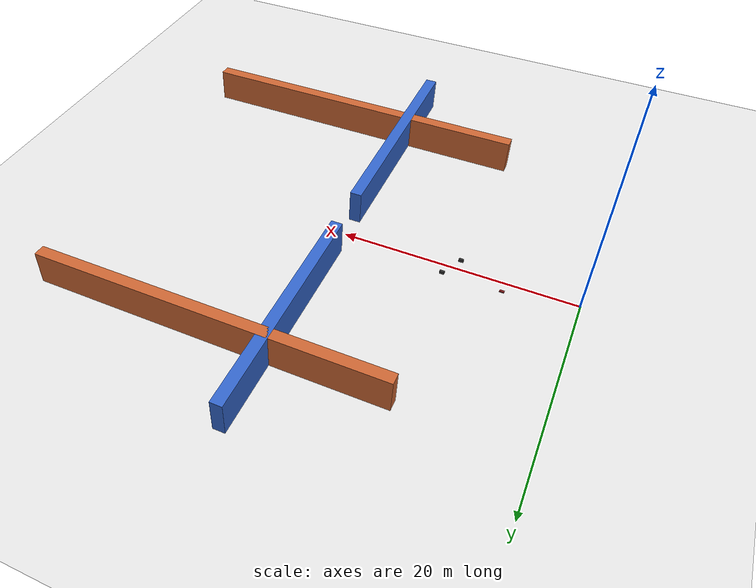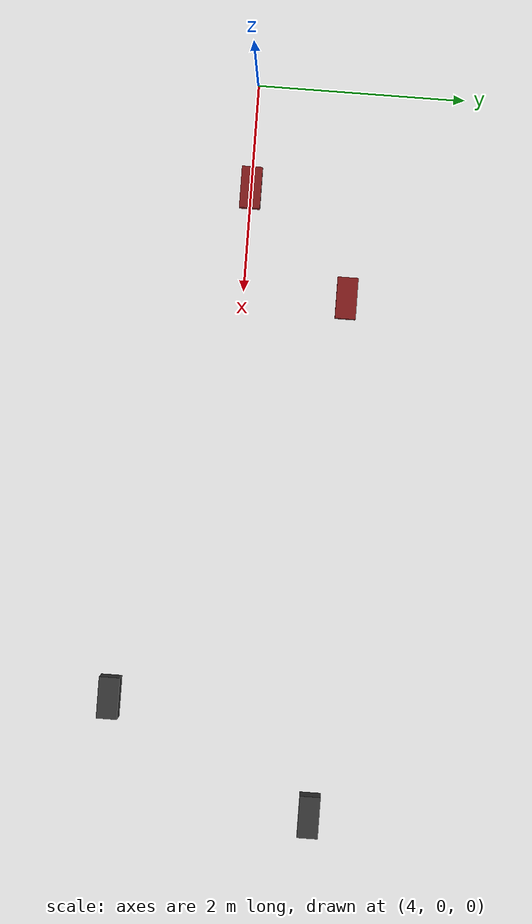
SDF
<?xml version="1.0" ?>
<sdf version="1.8">
  <world name="tall_wall_world">
    <!-- PHYSICS -->
    <physics name="default_physics" type="ode">
      <max_step_size>0.002</max_step_size>
      <real_time_factor>1.0</real_time_factor>
      <real_time_update_rate>500</real_time_update_rate>
    </physics>

    <!-- PLUGINS -->
    <plugin filename="gz-sim-physics-system" name="gz::sim::systems::Physics" />
    <plugin filename="gz-sim-sensors-system" name="gz::sim::systems::Sensors">
        <render_engine>ogre2</render_engine>
    </plugin>
    <plugin filename="gz-sim-user-commands-system" name="gz::sim::systems::UserCommands" />
    <plugin filename="gz-sim-scene-broadcaster-system" name="gz::sim::systems::SceneBroadcaster" />

    <light type="directional" name="sun"><pose>0 0 10 0 0 0</pose></light>

    <!-- THE BRIGHT WHITE GROUND PLANE -->
    <model name="ground_plane">
      <static>true</static>
      <link name="link">
        <collision name="collision">
          <geometry><plane><normal>0 0 1</normal><size>100 100</size></plane></geometry>
        </collision>
        <visual name="visual">
          <geometry><plane><normal>0 0 1</normal><size>100 100</size></plane></geometry>
          <material>
            <ambient>0.9 0.9 0.9 1</ambient>
            <diffuse>0.9 0.9 0.9 1</diffuse>
          </material>
        </visual>
      </link>
      <pose>0 0 0 0 0 0</pose>
    </model>

    <!-- TEST 1: SMALL BRICKS (10cm tall) -> DRIVE OVER -->
    <model name="small_brick_1">
      <static>true</static>
      <pose>5 0 0.05 0 0 0</pose>
      <link name="link">
        <collision name="col"><geometry><box><size>0.4 0.2 0.10</size></box></geometry></collision>
        <visual name="vis"><geometry><box><size>0.4 0.2 0.10</size></box></geometry><material><ambient>0.5 0.1 0.1 1</ambient></material></visual>
      </link>
    </model>

    <model name="small_brick_2">
      <static>true</static>
      <pose>6 1.0 0.05 0 0 0</pose>
      <link name="link">
        <collision name="col"><geometry><box><size>0.4 0.2 0.10</size></box></geometry></collision>
        <visual name="vis"><geometry><box><size>0.4 0.2 0.10</size></box></geometry><material><ambient>0.5 0.1 0.1 1</ambient></material></visual>
      </link>
    </model>

    <!-- TEST 2: CINDERBLOCKS (25cm tall) -> AVOID      -->
    <model name="cinderblock_1">
      <static>true</static>
      <pose>10 -1 0.125 0 0 0</pose>
      <link name="link">
        <collision name="col"><geometry><box><size>0.4 0.2 0.25</size></box></geometry></collision>
        <visual name="vis"><geometry><box><size>0.4 0.2 0.25</size></box></geometry><material><ambient>0.2 0.2 0.2 1</ambient></material></visual>
      </link>
    </model>

    <model name="cinderblock_2">
      <static>true</static>
      <pose>11 1 0.125 0 0 0</pose>
      <link name="link">
        <collision name="col"><geometry><box><size>0.4 0.2 0.25</size></box></geometry></collision>
        <visual name="vis"><geometry><box><size>0.4 0.2 0.25</size></box></geometry><material><ambient>0.2 0.2 0.2 1</ambient></material></visual>
      </link>
    </model>

    <!-- TEST 3: THE TACTICAL MAZE WALLS (Nav2 Router)  -->

    <!-- FRONT WALL: Split in the middle with a 4m gap -->
    <model name="wall_front_left">
      <static>true</static>
      <pose>20 12 1.5 0 0 0</pose>
      <link name="link">
        <collision name="collision"><geometry><box><size>1.0 20.0 3.0</size></box></geometry></collision>
        <visual name="visual"><geometry><box><size>1.0 20.0 3.0</size></box></geometry><material><ambient>0.2 0.4 0.8 1</ambient></material></visual>
      </link>
    </model>

    <model name="wall_front_right">
      <static>true</static>
      <pose>20 -12 1.5 0 0 0</pose>
      <link name="link">
        <collision name="collision"><geometry><box><size>1.0 20.0 3.0</size></box></geometry></collision>
        <visual name="visual"><geometry><box><size>1.0 20.0 3.0</size></box></geometry><material><ambient>0.2 0.4 0.8 1</ambient></material></visual>
      </link>
    </model>

    <!-- LEFT WALL: Block the left flank -->
    <model name="wall_left_flank">
      <static>true</static>
      <pose>25 15 1.5 0 0 1.57</pose>
      <link name="link">
        <collision name="collision"><geometry><box><size>1.0 30.0 3.0</size></box></geometry></collision>
        <visual name="visual"><geometry><box><size>1.0 30.0 3.0</size></box></geometry><material><ambient>0.8 0.4 0.2 1</ambient></material></visual>
      </link>
    </model>

    <!-- RIGHT WALL: Block the right flank -->
    <model name="wall_right_flank">
      <static>true</static>
      <pose>25 -15 1.5 0 0 1.57</pose>
      <link name="link">
        <collision name="collision"><geometry><box><size>1.0 30.0 3.0</size></box></geometry></collision>
        <visual name="visual"><geometry><box><size>1.0 30.0 3.0</size></box></geometry><material><ambient>0.8 0.4 0.2 1</ambient></material></visual>
      </link>
    </model>

  </world>
</sdf>
